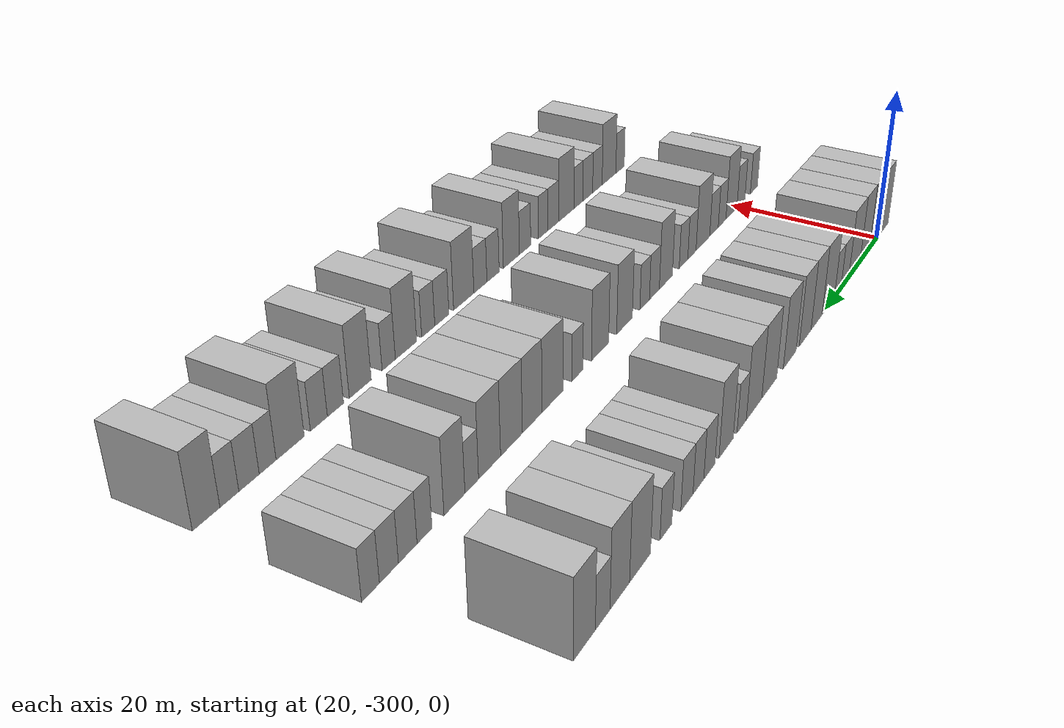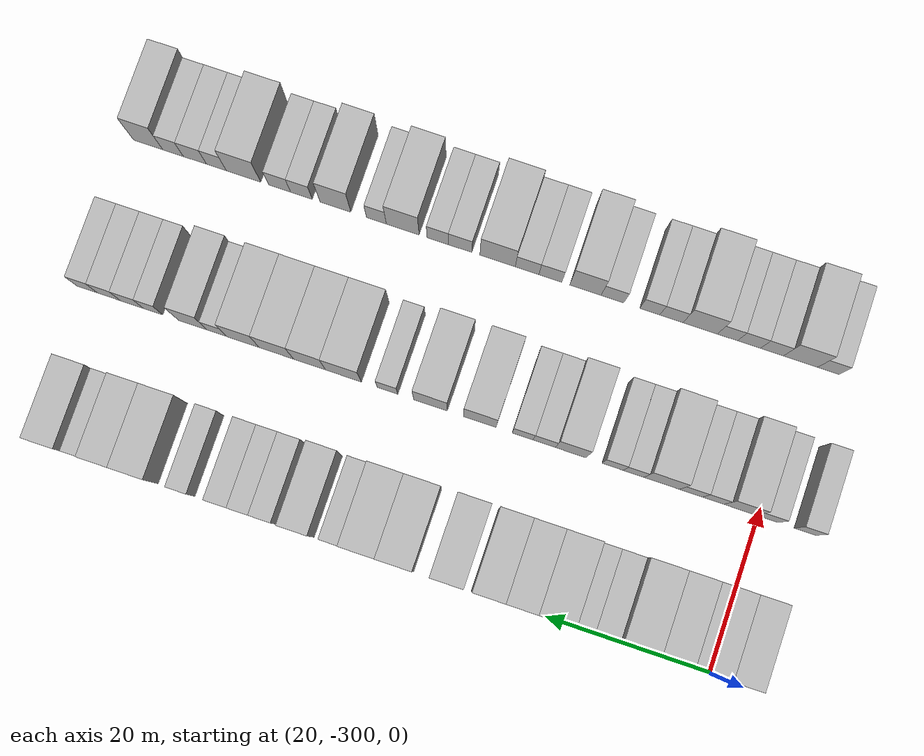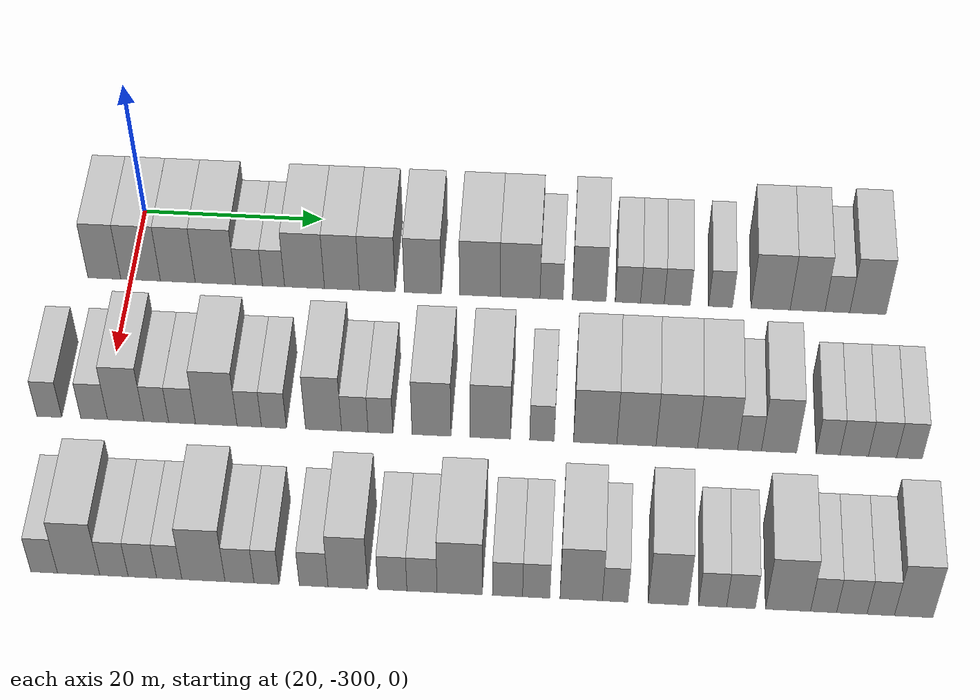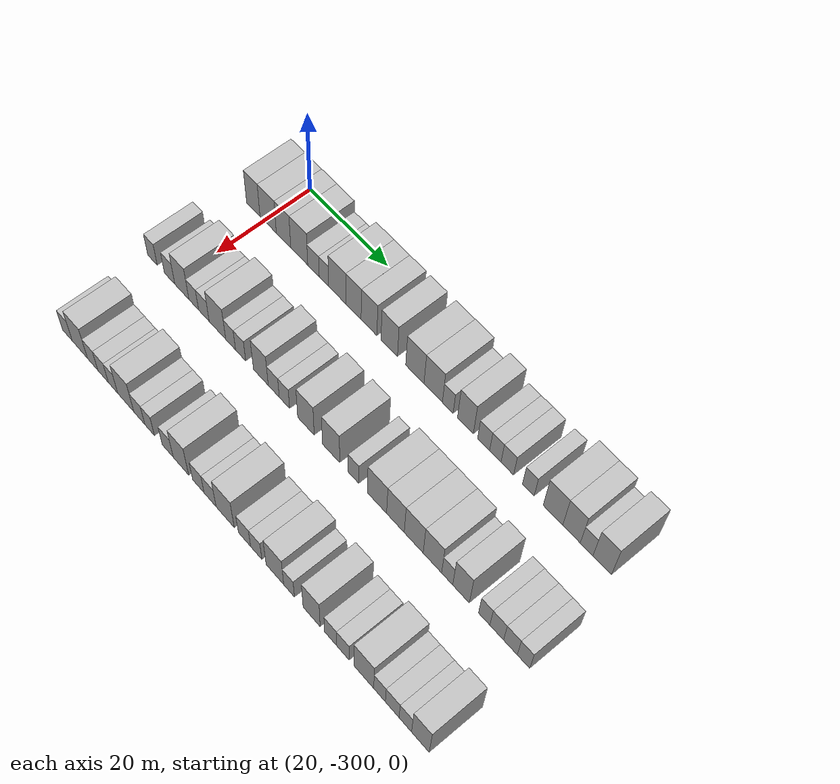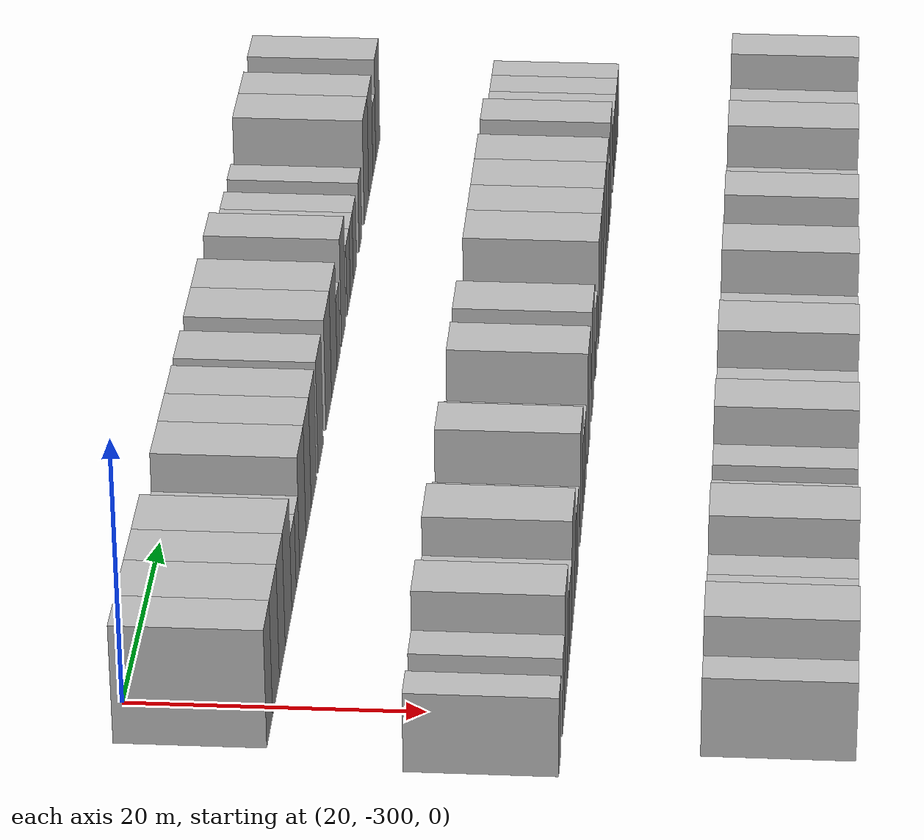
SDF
<sdf version="1.6">
 <world name="default">
  <model name="building_14">
   <static>1</static>
   <pose>25.0000 -302.9602 0 0.000000 0.000000 0.000000</pose>
   <link name="link">
    <pose>0 0 4.50 0 0 0</pose>
    <collision name="collision"><geometry><box><size>10.0000 3.6324 9.0000</size></box></geometry></collision>
    <visual name="visual">
     <cast_shadows>0</cast_shadows>
     <geometry><box><size>10.0000 3.6324 9.0000</size></box></geometry>
     <material>
      <script>
       <uri>model://HANNAS_wall/materials/scripts</uri>
       <uri>model://HANNAS_wall/materials/textures</uri>
       <name>vrc/HANNAS_wall</name>
      </script>
     </material>
    </visual>
   </link>
  </model>
  <model name="building_15">
   <static>1</static>
   <pose>25.0000 -298.9574 0 0.000000 0.000000 0.000000</pose>
   <link name="link">
    <pose>0 0 4.50 0 0 0</pose>
    <collision name="collision"><geometry><box><size>10.0000 4.3732 9.0000</size></box></geometry></collision>
    <visual name="visual">
     <cast_shadows>0</cast_shadows>
     <geometry><box><size>10.0000 4.3732 9.0000</size></box></geometry>
     <material>
      <script>
       <uri>model://HANNAS_wall/materials/scripts</uri>
       <uri>model://HANNAS_wall/materials/textures</uri>
       <name>vrc/HANNAS_wall</name>
      </script>
     </material>
    </visual>
   </link>
  </model>
  <model name="building_16">
   <static>1</static>
   <pose>25.0000 -294.8477 0 0.000000 0.000000 0.000000</pose>
   <link name="link">
    <pose>0 0 4.50 0 0 0</pose>
    <collision name="collision"><geometry><box><size>10.0000 3.8461 9.0000</size></box></geometry></collision>
    <visual name="visual">
     <cast_shadows>0</cast_shadows>
     <geometry><box><size>10.0000 3.8461 9.0000</size></box></geometry>
     <material>
      <script>
       <uri>model://HANNAS_wall/materials/scripts</uri>
       <uri>model://HANNAS_wall/materials/textures</uri>
       <name>vrc/HANNAS_wall</name>
      </script>
     </material>
    </visual>
   </link>
  </model>
  <model name="building_17">
   <static>1</static>
   <pose>25.0000 -290.7039 0 0.000000 0.000000 0.000000</pose>
   <link name="link">
    <pose>0 0 4.50 0 0 0</pose>
    <collision name="collision"><geometry><box><size>10.0000 4.4416 9.0000</size></box></geometry></collision>
    <visual name="visual">
     <cast_shadows>0</cast_shadows>
     <geometry><box><size>10.0000 4.4416 9.0000</size></box></geometry>
     <material>
      <script>
       <uri>model://HANNAS_wall/materials/scripts</uri>
       <uri>model://HANNAS_wall/materials/textures</uri>
       <name>vrc/HANNAS_wall</name>
      </script>
     </material>
    </visual>
   </link>
  </model>
  <model name="building_18">
   <static>1</static>
   <pose>25.0000 -286.9948 0 0.000000 0.000000 0.000000</pose>
   <link name="link">
    <pose>0 0 3.00 0 0 0</pose>
    <collision name="collision"><geometry><box><size>10.0000 2.9767 6.0000</size></box></geometry></collision>
    <visual name="visual">
     <cast_shadows>0</cast_shadows>
     <geometry><box><size>10.0000 2.9767 6.0000</size></box></geometry>
     <material>
      <script>
       <uri>model://HANNAS_wall/materials/scripts</uri>
       <uri>model://HANNAS_wall/materials/textures</uri>
       <name>vrc/HANNAS_wall</name>
      </script>
     </material>
    </visual>
   </link>
  </model>
  <model name="building_19">
   <static>1</static>
   <pose>25.0000 -284.2951 0 0.000000 0.000000 0.000000</pose>
   <link name="link">
    <pose>0 0 3.00 0 0 0</pose>
    <collision name="collision"><geometry><box><size>10.0000 2.4228 6.0000</size></box></geometry></collision>
    <visual name="visual">
     <cast_shadows>0</cast_shadows>
     <geometry><box><size>10.0000 2.4228 6.0000</size></box></geometry>
     <material>
      <script>
       <uri>model://HANNAS_wall/materials/scripts</uri>
       <uri>model://HANNAS_wall/materials/textures</uri>
       <name>vrc/HANNAS_wall</name>
      </script>
     </material>
    </visual>
   </link>
  </model>
  <model name="building_20">
   <static>1</static>
   <pose>25.0000 -280.8944 0 0.000000 0.000000 0.000000</pose>
   <link name="link">
    <pose>0 0 4.50 0 0 0</pose>
    <collision name="collision"><geometry><box><size>10.0000 4.3785 9.0000</size></box></geometry></collision>
    <visual name="visual">
     <cast_shadows>0</cast_shadows>
     <geometry><box><size>10.0000 4.3785 9.0000</size></box></geometry>
     <material>
      <script>
       <uri>model://HANNAS_wall/materials/scripts</uri>
       <uri>model://HANNAS_wall/materials/textures</uri>
       <name>vrc/HANNAS_wall</name>
      </script>
     </material>
    </visual>
   </link>
  </model>
  <model name="building_21">
   <static>1</static>
   <pose>25.0000 -276.7911 0 0.000000 0.000000 0.000000</pose>
   <link name="link">
    <pose>0 0 4.50 0 0 0</pose>
    <collision name="collision"><geometry><box><size>10.0000 3.8281 9.0000</size></box></geometry></collision>
    <visual name="visual">
     <cast_shadows>0</cast_shadows>
     <geometry><box><size>10.0000 3.8281 9.0000</size></box></geometry>
     <material>
      <script>
       <uri>model://HANNAS_wall/materials/scripts</uri>
       <uri>model://HANNAS_wall/materials/textures</uri>
       <name>vrc/HANNAS_wall</name>
      </script>
     </material>
    </visual>
   </link>
  </model>
  <model name="building_22">
   <static>1</static>
   <pose>25.0000 -272.9097 0 0.000000 0.000000 0.000000</pose>
   <link name="link">
    <pose>0 0 4.50 0 0 0</pose>
    <collision name="collision"><geometry><box><size>10.0000 3.9345 9.0000</size></box></geometry></collision>
    <visual name="visual">
     <cast_shadows>0</cast_shadows>
     <geometry><box><size>10.0000 3.9345 9.0000</size></box></geometry>
     <material>
      <script>
       <uri>model://HANNAS_wall/materials/scripts</uri>
       <uri>model://HANNAS_wall/materials/textures</uri>
       <name>vrc/HANNAS_wall</name>
      </script>
     </material>
    </visual>
   </link>
  </model>
  <model name="building_23">
   <static>1</static>
   <pose>25.0000 -267.9215 0 0.000000 0.000000 0.000000</pose>
   <link name="link">
    <pose>0 0 4.50 0 0 0</pose>
    <collision name="collision"><geometry><box><size>10.0000 4.0418 9.0000</size></box></geometry></collision>
    <visual name="visual">
     <cast_shadows>0</cast_shadows>
     <geometry><box><size>10.0000 4.0418 9.0000</size></box></geometry>
     <material>
      <script>
       <uri>model://HANNAS_wall/materials/scripts</uri>
       <uri>model://HANNAS_wall/materials/textures</uri>
       <name>vrc/HANNAS_wall</name>
      </script>
     </material>
    </visual>
   </link>
  </model>
  <model name="building_24">
   <static>1</static>
   <pose>25.0000 -261.6957 0 0.000000 0.000000 0.000000</pose>
   <link name="link">
    <pose>0 0 4.50 0 0 0</pose>
    <collision name="collision"><geometry><box><size>10.0000 4.4099 9.0000</size></box></geometry></collision>
    <visual name="visual">
     <cast_shadows>0</cast_shadows>
     <geometry><box><size>10.0000 4.4099 9.0000</size></box></geometry>
     <material>
      <script>
       <uri>model://HANNAS_wall/materials/scripts</uri>
       <uri>model://HANNAS_wall/materials/textures</uri>
       <name>vrc/HANNAS_wall</name>
      </script>
     </material>
    </visual>
   </link>
  </model>
  <model name="building_25">
   <static>1</static>
   <pose>25.0000 -257.3109 0 0.000000 0.000000 0.000000</pose>
   <link name="link">
    <pose>0 0 4.50 0 0 0</pose>
    <collision name="collision"><geometry><box><size>10.0000 4.3598 9.0000</size></box></geometry></collision>
    <visual name="visual">
     <cast_shadows>0</cast_shadows>
     <geometry><box><size>10.0000 4.3598 9.0000</size></box></geometry>
     <material>
      <script>
       <uri>model://HANNAS_wall/materials/scripts</uri>
       <uri>model://HANNAS_wall/materials/textures</uri>
       <name>vrc/HANNAS_wall</name>
      </script>
     </material>
    </visual>
   </link>
  </model>
  <model name="building_26">
   <static>1</static>
   <pose>25.0000 -253.8704 0 0.000000 0.000000 0.000000</pose>
   <link name="link">
    <pose>0 0 3.00 0 0 0</pose>
    <collision name="collision"><geometry><box><size>10.0000 2.5212 6.0000</size></box></geometry></collision>
    <visual name="visual">
     <cast_shadows>0</cast_shadows>
     <geometry><box><size>10.0000 2.5212 6.0000</size></box></geometry>
     <material>
      <script>
       <uri>model://HANNAS_wall/materials/scripts</uri>
       <uri>model://HANNAS_wall/materials/textures</uri>
       <name>vrc/HANNAS_wall</name>
      </script>
     </material>
    </visual>
   </link>
  </model>
  <model name="building_27">
   <static>1</static>
   <pose>25.0000 -249.7720 0 0.000000 0.000000 0.000000</pose>
   <link name="link">
    <pose>0 0 4.50 0 0 0</pose>
    <collision name="collision"><geometry><box><size>10.0000 3.6756 9.0000</size></box></geometry></collision>
    <visual name="visual">
     <cast_shadows>0</cast_shadows>
     <geometry><box><size>10.0000 3.6756 9.0000</size></box></geometry>
     <material>
      <script>
       <uri>model://HANNAS_wall/materials/scripts</uri>
       <uri>model://HANNAS_wall/materials/textures</uri>
       <name>vrc/HANNAS_wall</name>
      </script>
     </material>
    </visual>
   </link>
  </model>
  <model name="building_28">
   <static>1</static>
   <pose>25.0000 -245.5644 0 0.000000 0.000000 0.000000</pose>
   <link name="link">
    <pose>0 0 3.00 0 0 0</pose>
    <collision name="collision"><geometry><box><size>10.0000 2.7396 6.0000</size></box></geometry></collision>
    <visual name="visual">
     <cast_shadows>0</cast_shadows>
     <geometry><box><size>10.0000 2.7396 6.0000</size></box></geometry>
     <material>
      <script>
       <uri>model://HANNAS_wall/materials/scripts</uri>
       <uri>model://HANNAS_wall/materials/textures</uri>
       <name>vrc/HANNAS_wall</name>
      </script>
     </material>
    </visual>
   </link>
  </model>
  <model name="building_29">
   <static>1</static>
   <pose>25.0000 -242.9074 0 0.000000 0.000000 0.000000</pose>
   <link name="link">
    <pose>0 0 3.00 0 0 0</pose>
    <collision name="collision"><geometry><box><size>10.0000 2.5745 6.0000</size></box></geometry></collision>
    <visual name="visual">
     <cast_shadows>0</cast_shadows>
     <geometry><box><size>10.0000 2.5745 6.0000</size></box></geometry>
     <material>
      <script>
       <uri>model://HANNAS_wall/materials/scripts</uri>
       <uri>model://HANNAS_wall/materials/textures</uri>
       <name>vrc/HANNAS_wall</name>
      </script>
     </material>
    </visual>
   </link>
  </model>
  <model name="building_30">
   <static>1</static>
   <pose>25.0000 -240.2080 0 0.000000 0.000000 0.000000</pose>
   <link name="link">
    <pose>0 0 3.00 0 0 0</pose>
    <collision name="collision"><geometry><box><size>10.0000 2.8241 6.0000</size></box></geometry></collision>
    <visual name="visual">
     <cast_shadows>0</cast_shadows>
     <geometry><box><size>10.0000 2.8241 6.0000</size></box></geometry>
     <material>
      <script>
       <uri>model://HANNAS_wall/materials/scripts</uri>
       <uri>model://HANNAS_wall/materials/textures</uri>
       <name>vrc/HANNAS_wall</name>
      </script>
     </material>
    </visual>
   </link>
  </model>
  <model name="building_31">
   <static>1</static>
   <pose>25.0000 -235.5040 0 0.000000 0.000000 0.000000</pose>
   <link name="link">
    <pose>0 0 3.00 0 0 0</pose>
    <collision name="collision"><geometry><box><size>10.0000 2.5838 6.0000</size></box></geometry></collision>
    <visual name="visual">
     <cast_shadows>0</cast_shadows>
     <geometry><box><size>10.0000 2.5838 6.0000</size></box></geometry>
     <material>
      <script>
       <uri>model://HANNAS_wall/materials/scripts</uri>
       <uri>model://HANNAS_wall/materials/textures</uri>
       <name>vrc/HANNAS_wall</name>
      </script>
     </material>
    </visual>
   </link>
  </model>
  <model name="building_32">
   <static>1</static>
   <pose>25.0000 -230.0899 0 0.000000 0.000000 0.000000</pose>
   <link name="link">
    <pose>0 0 4.50 0 0 0</pose>
    <collision name="collision"><geometry><box><size>10.0000 4.2443 9.0000</size></box></geometry></collision>
    <visual name="visual">
     <cast_shadows>0</cast_shadows>
     <geometry><box><size>10.0000 4.2443 9.0000</size></box></geometry>
     <material>
      <script>
       <uri>model://HANNAS_wall/materials/scripts</uri>
       <uri>model://HANNAS_wall/materials/textures</uri>
       <name>vrc/HANNAS_wall</name>
      </script>
     </material>
    </visual>
   </link>
  </model>
  <model name="building_33">
   <static>1</static>
   <pose>25.0000 -226.0862 0 0.000000 0.000000 0.000000</pose>
   <link name="link">
    <pose>0 0 4.50 0 0 0</pose>
    <collision name="collision"><geometry><box><size>10.0000 3.7631 9.0000</size></box></geometry></collision>
    <visual name="visual">
     <cast_shadows>0</cast_shadows>
     <geometry><box><size>10.0000 3.7631 9.0000</size></box></geometry>
     <material>
      <script>
       <uri>model://HANNAS_wall/materials/scripts</uri>
       <uri>model://HANNAS_wall/materials/textures</uri>
       <name>vrc/HANNAS_wall</name>
      </script>
     </material>
    </visual>
   </link>
  </model>
  <model name="building_34">
   <static>1</static>
   <pose>25.0000 -222.8587 0 0.000000 0.000000 0.000000</pose>
   <link name="link">
    <pose>0 0 3.00 0 0 0</pose>
    <collision name="collision"><geometry><box><size>10.0000 2.6919 6.0000</size></box></geometry></collision>
    <visual name="visual">
     <cast_shadows>0</cast_shadows>
     <geometry><box><size>10.0000 2.6919 6.0000</size></box></geometry>
     <material>
      <script>
       <uri>model://HANNAS_wall/materials/scripts</uri>
       <uri>model://HANNAS_wall/materials/textures</uri>
       <name>vrc/HANNAS_wall</name>
      </script>
     </material>
    </visual>
   </link>
  </model>
  <model name="building_35">
   <static>1</static>
   <pose>25.0000 -219.5621 0 0.000000 0.000000 0.000000</pose>
   <link name="link">
    <pose>0 0 4.50 0 0 0</pose>
    <collision name="collision"><geometry><box><size>10.0000 3.9012 9.0000</size></box></geometry></collision>
    <visual name="visual">
     <cast_shadows>0</cast_shadows>
     <geometry><box><size>10.0000 3.9012 9.0000</size></box></geometry>
     <material>
      <script>
       <uri>model://HANNAS_wall/materials/scripts</uri>
       <uri>model://HANNAS_wall/materials/textures</uri>
       <name>vrc/HANNAS_wall</name>
      </script>
     </material>
    </visual>
   </link>
  </model>
  <model name="building_185">
   <static>1</static>
   <pose>44.0000 -305.6459 0 0.000000 0.000000 0.000000</pose>
   <link name="link">
    <pose>0 0 3.00 0 0 0</pose>
    <collision name="collision"><geometry><box><size>10.0000 2.6331 6.0000</size></box></geometry></collision>
    <visual name="visual">
     <cast_shadows>0</cast_shadows>
     <geometry><box><size>10.0000 2.6331 6.0000</size></box></geometry>
     <material>
      <script>
       <uri>model://HANNAS_wall/materials/scripts</uri>
       <uri>model://HANNAS_wall/materials/textures</uri>
       <name>vrc/HANNAS_wall</name>
      </script>
     </material>
    </visual>
   </link>
  </model>
  <model name="building_186">
   <static>1</static>
   <pose>44.0000 -300.9179 0 0.000000 0.000000 0.000000</pose>
   <link name="link">
    <pose>0 0 3.00 0 0 0</pose>
    <collision name="collision"><geometry><box><size>10.0000 2.8230 6.0000</size></box></geometry></collision>
    <visual name="visual">
     <cast_shadows>0</cast_shadows>
     <geometry><box><size>10.0000 2.8230 6.0000</size></box></geometry>
     <material>
      <script>
       <uri>model://HANNAS_wall/materials/scripts</uri>
       <uri>model://HANNAS_wall/materials/textures</uri>
       <name>vrc/HANNAS_wall</name>
      </script>
     </material>
    </visual>
   </link>
  </model>
  <model name="building_187">
   <static>1</static>
   <pose>44.0000 -297.5919 0 0.000000 0.000000 0.000000</pose>
   <link name="link">
    <pose>0 0 4.50 0 0 0</pose>
    <collision name="collision"><geometry><box><size>10.0000 3.8291 9.0000</size></box></geometry></collision>
    <visual name="visual">
     <cast_shadows>0</cast_shadows>
     <geometry><box><size>10.0000 3.8291 9.0000</size></box></geometry>
     <material>
      <script>
       <uri>model://HANNAS_wall/materials/scripts</uri>
       <uri>model://HANNAS_wall/materials/textures</uri>
       <name>vrc/HANNAS_wall</name>
      </script>
     </material>
    </visual>
   </link>
  </model>
  <model name="building_188">
   <static>1</static>
   <pose>44.0000 -294.3814 0 0.000000 0.000000 0.000000</pose>
   <link name="link">
    <pose>0 0 3.00 0 0 0</pose>
    <collision name="collision"><geometry><box><size>10.0000 2.5919 6.0000</size></box></geometry></collision>
    <visual name="visual">
     <cast_shadows>0</cast_shadows>
     <geometry><box><size>10.0000 2.5919 6.0000</size></box></geometry>
     <material>
      <script>
       <uri>model://HANNAS_wall/materials/scripts</uri>
       <uri>model://HANNAS_wall/materials/textures</uri>
       <name>vrc/HANNAS_wall</name>
      </script>
     </material>
    </visual>
   </link>
  </model>
  <model name="building_189">
   <static>1</static>
   <pose>44.0000 -291.6743 0 0.000000 0.000000 0.000000</pose>
   <link name="link">
    <pose>0 0 3.00 0 0 0</pose>
    <collision name="collision"><geometry><box><size>10.0000 2.8221 6.0000</size></box></geometry></collision>
    <visual name="visual">
     <cast_shadows>0</cast_shadows>
     <geometry><box><size>10.0000 2.8221 6.0000</size></box></geometry>
     <material>
      <script>
       <uri>model://HANNAS_wall/materials/scripts</uri>
       <uri>model://HANNAS_wall/materials/textures</uri>
       <name>vrc/HANNAS_wall</name>
      </script>
     </material>
    </visual>
   </link>
  </model>
  <model name="building_190">
   <static>1</static>
   <pose>44.0000 -288.0842 0 0.000000 0.000000 0.000000</pose>
   <link name="link">
    <pose>0 0 4.50 0 0 0</pose>
    <collision name="collision"><geometry><box><size>10.0000 4.3581 9.0000</size></box></geometry></collision>
    <visual name="visual">
     <cast_shadows>0</cast_shadows>
     <geometry><box><size>10.0000 4.3581 9.0000</size></box></geometry>
     <material>
      <script>
       <uri>model://HANNAS_wall/materials/scripts</uri>
       <uri>model://HANNAS_wall/materials/textures</uri>
       <name>vrc/HANNAS_wall</name>
      </script>
     </material>
    </visual>
   </link>
  </model>
  <model name="building_191">
   <static>1</static>
   <pose>44.0000 -284.6256 0 0.000000 0.000000 0.000000</pose>
   <link name="link">
    <pose>0 0 3.00 0 0 0</pose>
    <collision name="collision"><geometry><box><size>10.0000 2.5593 6.0000</size></box></geometry></collision>
    <visual name="visual">
     <cast_shadows>0</cast_shadows>
     <geometry><box><size>10.0000 2.5593 6.0000</size></box></geometry>
     <material>
      <script>
       <uri>model://HANNAS_wall/materials/scripts</uri>
       <uri>model://HANNAS_wall/materials/textures</uri>
       <name>vrc/HANNAS_wall</name>
      </script>
     </material>
    </visual>
   </link>
  </model>
  <model name="building_192">
   <static>1</static>
   <pose>44.0000 -282.0410 0 0.000000 0.000000 0.000000</pose>
   <link name="link">
    <pose>0 0 3.00 0 0 0</pose>
    <collision name="collision"><geometry><box><size>10.0000 2.6097 6.0000</size></box></geometry></collision>
    <visual name="visual">
     <cast_shadows>0</cast_shadows>
     <geometry><box><size>10.0000 2.6097 6.0000</size></box></geometry>
     <material>
      <script>
       <uri>model://HANNAS_wall/materials/scripts</uri>
       <uri>model://HANNAS_wall/materials/textures</uri>
       <name>vrc/HANNAS_wall</name>
      </script>
     </material>
    </visual>
   </link>
  </model>
  <model name="building_193">
   <static>1</static>
   <pose>44.0000 -276.8554 0 0.000000 0.000000 0.000000</pose>
   <link name="link">
    <pose>0 0 4.50 0 0 0</pose>
    <collision name="collision"><geometry><box><size>10.0000 3.7615 9.0000</size></box></geometry></collision>
    <visual name="visual">
     <cast_shadows>0</cast_shadows>
     <geometry><box><size>10.0000 3.7615 9.0000</size></box></geometry>
     <material>
      <script>
       <uri>model://HANNAS_wall/materials/scripts</uri>
       <uri>model://HANNAS_wall/materials/textures</uri>
       <name>vrc/HANNAS_wall</name>
      </script>
     </material>
    </visual>
   </link>
  </model>
  <model name="building_194">
   <static>1</static>
   <pose>44.0000 -273.5908 0 0.000000 0.000000 0.000000</pose>
   <link name="link">
    <pose>0 0 3.00 0 0 0</pose>
    <collision name="collision"><geometry><box><size>10.0000 2.7677 6.0000</size></box></geometry></collision>
    <visual name="visual">
     <cast_shadows>0</cast_shadows>
     <geometry><box><size>10.0000 2.7677 6.0000</size></box></geometry>
     <material>
      <script>
       <uri>model://HANNAS_wall/materials/scripts</uri>
       <uri>model://HANNAS_wall/materials/textures</uri>
       <name>vrc/HANNAS_wall</name>
      </script>
     </material>
    </visual>
   </link>
  </model>
  <model name="building_195">
   <static>1</static>
   <pose>44.0000 -270.9117 0 0.000000 0.000000 0.000000</pose>
   <link name="link">
    <pose>0 0 3.00 0 0 0</pose>
    <collision name="collision"><geometry><box><size>10.0000 2.5904 6.0000</size></box></geometry></collision>
    <visual name="visual">
     <cast_shadows>0</cast_shadows>
     <geometry><box><size>10.0000 2.5904 6.0000</size></box></geometry>
     <material>
      <script>
       <uri>model://HANNAS_wall/materials/scripts</uri>
       <uri>model://HANNAS_wall/materials/textures</uri>
       <name>vrc/HANNAS_wall</name>
      </script>
     </material>
    </visual>
   </link>
  </model>
  <model name="building_196">
   <static>1</static>
   <pose>44.0000 -265.5893 0 0.000000 0.000000 0.000000</pose>
   <link name="link">
    <pose>0 0 4.50 0 0 0</pose>
    <collision name="collision"><geometry><box><size>10.0000 4.0545 9.0000</size></box></geometry></collision>
    <visual name="visual">
     <cast_shadows>0</cast_shadows>
     <geometry><box><size>10.0000 4.0545 9.0000</size></box></geometry>
     <material>
      <script>
       <uri>model://HANNAS_wall/materials/scripts</uri>
       <uri>model://HANNAS_wall/materials/textures</uri>
       <name>vrc/HANNAS_wall</name>
      </script>
     </material>
    </visual>
   </link>
  </model>
  <model name="building_197">
   <static>1</static>
   <pose>44.0000 -259.4770 0 0.000000 0.000000 0.000000</pose>
   <link name="link">
    <pose>0 0 4.50 0 0 0</pose>
    <collision name="collision"><geometry><box><size>10.0000 4.1701 9.0000</size></box></geometry></collision>
    <visual name="visual">
     <cast_shadows>0</cast_shadows>
     <geometry><box><size>10.0000 4.1701 9.0000</size></box></geometry>
     <material>
      <script>
       <uri>model://HANNAS_wall/materials/scripts</uri>
       <uri>model://HANNAS_wall/materials/textures</uri>
       <name>vrc/HANNAS_wall</name>
      </script>
     </material>
    </visual>
   </link>
  </model>
  <model name="building_198">
   <static>1</static>
   <pose>44.0000 -254.1169 0 0.000000 0.000000 0.000000</pose>
   <link name="link">
    <pose>0 0 3.00 0 0 0</pose>
    <collision name="collision"><geometry><box><size>10.0000 2.5501 6.0000</size></box></geometry></collision>
    <visual name="visual">
     <cast_shadows>0</cast_shadows>
     <geometry><box><size>10.0000 2.5501 6.0000</size></box></geometry>
     <material>
      <script>
       <uri>model://HANNAS_wall/materials/scripts</uri>
       <uri>model://HANNAS_wall/materials/textures</uri>
       <name>vrc/HANNAS_wall</name>
      </script>
     </material>
    </visual>
   </link>
  </model>
  <model name="building_199">
   <static>1</static>
   <pose>44.0000 -248.6000 0 0.000000 0.000000 0.000000</pose>
   <link name="link">
    <pose>0 0 4.50 0 0 0</pose>
    <collision name="collision"><geometry><box><size>10.0000 4.4836 9.0000</size></box></geometry></collision>
    <visual name="visual">
     <cast_shadows>0</cast_shadows>
     <geometry><box><size>10.0000 4.4836 9.0000</size></box></geometry>
     <material>
      <script>
       <uri>model://HANNAS_wall/materials/scripts</uri>
       <uri>model://HANNAS_wall/materials/textures</uri>
       <name>vrc/HANNAS_wall</name>
      </script>
     </material>
    </visual>
   </link>
  </model>
  <model name="building_200">
   <static>1</static>
   <pose>44.0000 -244.3317 0 0.000000 0.000000 0.000000</pose>
   <link name="link">
    <pose>0 0 4.50 0 0 0</pose>
    <collision name="collision"><geometry><box><size>10.0000 4.0530 9.0000</size></box></geometry></collision>
    <visual name="visual">
     <cast_shadows>0</cast_shadows>
     <geometry><box><size>10.0000 4.0530 9.0000</size></box></geometry>
     <material>
      <script>
       <uri>model://HANNAS_wall/materials/scripts</uri>
       <uri>model://HANNAS_wall/materials/textures</uri>
       <name>vrc/HANNAS_wall</name>
      </script>
     </material>
    </visual>
   </link>
  </model>
  <model name="building_201">
   <static>1</static>
   <pose>44.0000 -240.1567 0 0.000000 0.000000 0.000000</pose>
   <link name="link">
    <pose>0 0 4.50 0 0 0</pose>
    <collision name="collision"><geometry><box><size>10.0000 4.2970 9.0000</size></box></geometry></collision>
    <visual name="visual">
     <cast_shadows>0</cast_shadows>
     <geometry><box><size>10.0000 4.2970 9.0000</size></box></geometry>
     <material>
      <script>
       <uri>model://HANNAS_wall/materials/scripts</uri>
       <uri>model://HANNAS_wall/materials/textures</uri>
       <name>vrc/HANNAS_wall</name>
      </script>
     </material>
    </visual>
   </link>
  </model>
  <model name="building_202">
   <static>1</static>
   <pose>44.0000 -235.9486 0 0.000000 0.000000 0.000000</pose>
   <link name="link">
    <pose>0 0 4.50 0 0 0</pose>
    <collision name="collision"><geometry><box><size>10.0000 4.1191 9.0000</size></box></geometry></collision>
    <visual name="visual">
     <cast_shadows>0</cast_shadows>
     <geometry><box><size>10.0000 4.1191 9.0000</size></box></geometry>
     <material>
      <script>
       <uri>model://HANNAS_wall/materials/scripts</uri>
       <uri>model://HANNAS_wall/materials/textures</uri>
       <name>vrc/HANNAS_wall</name>
      </script>
     </material>
    </visual>
   </link>
  </model>
  <model name="building_203">
   <static>1</static>
   <pose>44.0000 -232.6608 0 0.000000 0.000000 0.000000</pose>
   <link name="link">
    <pose>0 0 3.00 0 0 0</pose>
    <collision name="collision"><geometry><box><size>10.0000 2.4566 6.0000</size></box></geometry></collision>
    <visual name="visual">
     <cast_shadows>0</cast_shadows>
     <geometry><box><size>10.0000 2.4566 6.0000</size></box></geometry>
     <material>
      <script>
       <uri>model://HANNAS_wall/materials/scripts</uri>
       <uri>model://HANNAS_wall/materials/textures</uri>
       <name>vrc/HANNAS_wall</name>
      </script>
     </material>
    </visual>
   </link>
  </model>
  <model name="building_204">
   <static>1</static>
   <pose>44.0000 -229.6119 0 0.000000 0.000000 0.000000</pose>
   <link name="link">
    <pose>0 0 4.50 0 0 0</pose>
    <collision name="collision"><geometry><box><size>10.0000 3.6412 9.0000</size></box></geometry></collision>
    <visual name="visual">
     <cast_shadows>0</cast_shadows>
     <geometry><box><size>10.0000 3.6412 9.0000</size></box></geometry>
     <material>
      <script>
       <uri>model://HANNAS_wall/materials/scripts</uri>
       <uri>model://HANNAS_wall/materials/textures</uri>
       <name>vrc/HANNAS_wall</name>
      </script>
     </material>
    </visual>
   </link>
  </model>
  <model name="building_205">
   <static>1</static>
   <pose>44.0000 -224.5716 0 0.000000 0.000000 0.000000</pose>
   <link name="link">
    <pose>0 0 3.00 0 0 0</pose>
    <collision name="collision"><geometry><box><size>10.0000 2.4394 6.0000</size></box></geometry></collision>
    <visual name="visual">
     <cast_shadows>0</cast_shadows>
     <geometry><box><size>10.0000 2.4394 6.0000</size></box></geometry>
     <material>
      <script>
       <uri>model://HANNAS_wall/materials/scripts</uri>
       <uri>model://HANNAS_wall/materials/textures</uri>
       <name>vrc/HANNAS_wall</name>
      </script>
     </material>
    </visual>
   </link>
  </model>
  <model name="building_206">
   <static>1</static>
   <pose>44.0000 -221.8832 0 0.000000 0.000000 0.000000</pose>
   <link name="link">
    <pose>0 0 3.00 0 0 0</pose>
    <collision name="collision"><geometry><box><size>10.0000 2.9373 6.0000</size></box></geometry></collision>
    <visual name="visual">
     <cast_shadows>0</cast_shadows>
     <geometry><box><size>10.0000 2.9373 6.0000</size></box></geometry>
     <material>
      <script>
       <uri>model://HANNAS_wall/materials/scripts</uri>
       <uri>model://HANNAS_wall/materials/textures</uri>
       <name>vrc/HANNAS_wall</name>
      </script>
     </material>
    </visual>
   </link>
  </model>
  <model name="building_207">
   <static>1</static>
   <pose>44.0000 -218.9703 0 0.000000 0.000000 0.000000</pose>
   <link name="link">
    <pose>0 0 3.00 0 0 0</pose>
    <collision name="collision"><geometry><box><size>10.0000 2.8885 6.0000</size></box></geometry></collision>
    <visual name="visual">
     <cast_shadows>0</cast_shadows>
     <geometry><box><size>10.0000 2.8885 6.0000</size></box></geometry>
     <material>
      <script>
       <uri>model://HANNAS_wall/materials/scripts</uri>
       <uri>model://HANNAS_wall/materials/textures</uri>
       <name>vrc/HANNAS_wall</name>
      </script>
     </material>
    </visual>
   </link>
  </model>
  <model name="building_208">
   <static>1</static>
   <pose>44.0000 -216.2135 0 0.000000 0.000000 0.000000</pose>
   <link name="link">
    <pose>0 0 3.00 0 0 0</pose>
    <collision name="collision"><geometry><box><size>10.0000 2.6251 6.0000</size></box></geometry></collision>
    <visual name="visual">
     <cast_shadows>0</cast_shadows>
     <geometry><box><size>10.0000 2.6251 6.0000</size></box></geometry>
     <material>
      <script>
       <uri>model://HANNAS_wall/materials/scripts</uri>
       <uri>model://HANNAS_wall/materials/textures</uri>
       <name>vrc/HANNAS_wall</name>
      </script>
     </material>
    </visual>
   </link>
  </model>
  <model name="building_358">
   <static>1</static>
   <pose>63.0000 -302.7469 0 0.000000 0.000000 0.000000</pose>
   <link name="link">
    <pose>0 0 3.00 0 0 0</pose>
    <collision name="collision"><geometry><box><size>10.0000 2.6545 6.0000</size></box></geometry></collision>
    <visual name="visual">
     <cast_shadows>0</cast_shadows>
     <geometry><box><size>10.0000 2.6545 6.0000</size></box></geometry>
     <material>
      <script>
       <uri>model://HANNAS_wall/materials/scripts</uri>
       <uri>model://HANNAS_wall/materials/textures</uri>
       <name>vrc/HANNAS_wall</name>
      </script>
     </material>
    </visual>
   </link>
  </model>
  <model name="building_359">
   <static>1</static>
   <pose>63.0000 -299.3025 0 0.000000 0.000000 0.000000</pose>
   <link name="link">
    <pose>0 0 4.50 0 0 0</pose>
    <collision name="collision"><geometry><box><size>10.0000 4.2343 9.0000</size></box></geometry></collision>
    <visual name="visual">
     <cast_shadows>0</cast_shadows>
     <geometry><box><size>10.0000 4.2343 9.0000</size></box></geometry>
     <material>
      <script>
       <uri>model://HANNAS_wall/materials/scripts</uri>
       <uri>model://HANNAS_wall/materials/textures</uri>
       <name>vrc/HANNAS_wall</name>
      </script>
     </material>
    </visual>
   </link>
  </model>
  <model name="building_360">
   <static>1</static>
   <pose>63.0000 -295.7668 0 0.000000 0.000000 0.000000</pose>
   <link name="link">
    <pose>0 0 3.00 0 0 0</pose>
    <collision name="collision"><geometry><box><size>10.0000 2.8371 6.0000</size></box></geometry></collision>
    <visual name="visual">
     <cast_shadows>0</cast_shadows>
     <geometry><box><size>10.0000 2.8371 6.0000</size></box></geometry>
     <material>
      <script>
       <uri>model://HANNAS_wall/materials/scripts</uri>
       <uri>model://HANNAS_wall/materials/textures</uri>
       <name>vrc/HANNAS_wall</name>
      </script>
     </material>
    </visual>
   </link>
  </model>
  <model name="building_361">
   <static>1</static>
   <pose>63.0000 -292.9269 0 0.000000 0.000000 0.000000</pose>
   <link name="link">
    <pose>0 0 3.00 0 0 0</pose>
    <collision name="collision"><geometry><box><size>10.0000 2.8427 6.0000</size></box></geometry></collision>
    <visual name="visual">
     <cast_shadows>0</cast_shadows>
     <geometry><box><size>10.0000 2.8427 6.0000</size></box></geometry>
     <material>
      <script>
       <uri>model://HANNAS_wall/materials/scripts</uri>
       <uri>model://HANNAS_wall/materials/textures</uri>
       <name>vrc/HANNAS_wall</name>
      </script>
     </material>
    </visual>
   </link>
  </model>
  <model name="building_362">
   <static>1</static>
   <pose>63.0000 -290.2471 0 0.000000 0.000000 0.000000</pose>
   <link name="link">
    <pose>0 0 3.00 0 0 0</pose>
    <collision name="collision"><geometry><box><size>10.0000 2.5169 6.0000</size></box></geometry></collision>
    <visual name="visual">
     <cast_shadows>0</cast_shadows>
     <geometry><box><size>10.0000 2.5169 6.0000</size></box></geometry>
     <material>
      <script>
       <uri>model://HANNAS_wall/materials/scripts</uri>
       <uri>model://HANNAS_wall/materials/textures</uri>
       <name>vrc/HANNAS_wall</name>
      </script>
     </material>
    </visual>
   </link>
  </model>
  <model name="building_363">
   <static>1</static>
   <pose>63.0000 -286.8441 0 0.000000 0.000000 0.000000</pose>
   <link name="link">
    <pose>0 0 4.50 0 0 0</pose>
    <collision name="collision"><geometry><box><size>10.0000 4.2891 9.0000</size></box></geometry></collision>
    <visual name="visual">
     <cast_shadows>0</cast_shadows>
     <geometry><box><size>10.0000 4.2891 9.0000</size></box></geometry>
     <material>
      <script>
       <uri>model://HANNAS_wall/materials/scripts</uri>
       <uri>model://HANNAS_wall/materials/textures</uri>
       <name>vrc/HANNAS_wall</name>
      </script>
     </material>
    </visual>
   </link>
  </model>
  <model name="building_364">
   <static>1</static>
   <pose>63.0000 -283.2509 0 0.000000 0.000000 0.000000</pose>
   <link name="link">
    <pose>0 0 3.00 0 0 0</pose>
    <collision name="collision"><geometry><box><size>10.0000 2.8972 6.0000</size></box></geometry></collision>
    <visual name="visual">
     <cast_shadows>0</cast_shadows>
     <geometry><box><size>10.0000 2.8972 6.0000</size></box></geometry>
     <material>
      <script>
       <uri>model://HANNAS_wall/materials/scripts</uri>
       <uri>model://HANNAS_wall/materials/textures</uri>
       <name>vrc/HANNAS_wall</name>
      </script>
     </material>
    </visual>
   </link>
  </model>
  <model name="building_365">
   <static>1</static>
   <pose>63.0000 -280.5549 0 0.000000 0.000000 0.000000</pose>
   <link name="link">
    <pose>0 0 3.00 0 0 0</pose>
    <collision name="collision"><geometry><box><size>10.0000 2.4950 6.0000</size></box></geometry></collision>
    <visual name="visual">
     <cast_shadows>0</cast_shadows>
     <geometry><box><size>10.0000 2.4950 6.0000</size></box></geometry>
     <material>
      <script>
       <uri>model://HANNAS_wall/materials/scripts</uri>
       <uri>model://HANNAS_wall/materials/textures</uri>
       <name>vrc/HANNAS_wall</name>
      </script>
     </material>
    </visual>
   </link>
  </model>
  <model name="building_366">
   <static>1</static>
   <pose>63.0000 -275.8825 0 0.000000 0.000000 0.000000</pose>
   <link name="link">
    <pose>0 0 3.00 0 0 0</pose>
    <collision name="collision"><geometry><box><size>10.0000 2.8498 6.0000</size></box></geometry></collision>
    <visual name="visual">
     <cast_shadows>0</cast_shadows>
     <geometry><box><size>10.0000 2.8498 6.0000</size></box></geometry>
     <material>
      <script>
       <uri>model://HANNAS_wall/materials/scripts</uri>
       <uri>model://HANNAS_wall/materials/textures</uri>
       <name>vrc/HANNAS_wall</name>
      </script>
     </material>
    </visual>
   </link>
  </model>
  <model name="building_367">
   <static>1</static>
   <pose>63.0000 -272.4917 0 0.000000 0.000000 0.000000</pose>
   <link name="link">
    <pose>0 0 4.50 0 0 0</pose>
    <collision name="collision"><geometry><box><size>10.0000 3.9318 9.0000</size></box></geometry></collision>
    <visual name="visual">
     <cast_shadows>0</cast_shadows>
     <geometry><box><size>10.0000 3.9318 9.0000</size></box></geometry>
     <material>
      <script>
       <uri>model://HANNAS_wall/materials/scripts</uri>
       <uri>model://HANNAS_wall/materials/textures</uri>
       <name>vrc/HANNAS_wall</name>
      </script>
     </material>
    </visual>
   </link>
  </model>
  <model name="building_368">
   <static>1</static>
   <pose>63.0000 -268.0848 0 0.000000 0.000000 0.000000</pose>
   <link name="link">
    <pose>0 0 3.00 0 0 0</pose>
    <collision name="collision"><geometry><box><size>10.0000 2.8820 6.0000</size></box></geometry></collision>
    <visual name="visual">
     <cast_shadows>0</cast_shadows>
     <geometry><box><size>10.0000 2.8820 6.0000</size></box></geometry>
     <material>
      <script>
       <uri>model://HANNAS_wall/materials/scripts</uri>
       <uri>model://HANNAS_wall/materials/textures</uri>
       <name>vrc/HANNAS_wall</name>
      </script>
     </material>
    </visual>
   </link>
  </model>
  <model name="building_369">
   <static>1</static>
   <pose>63.0000 -265.1536 0 0.000000 0.000000 0.000000</pose>
   <link name="link">
    <pose>0 0 3.00 0 0 0</pose>
    <collision name="collision"><geometry><box><size>10.0000 2.9804 6.0000</size></box></geometry></collision>
    <visual name="visual">
     <cast_shadows>0</cast_shadows>
     <geometry><box><size>10.0000 2.9804 6.0000</size></box></geometry>
     <material>
      <script>
       <uri>model://HANNAS_wall/materials/scripts</uri>
       <uri>model://HANNAS_wall/materials/textures</uri>
       <name>vrc/HANNAS_wall</name>
      </script>
     </material>
    </visual>
   </link>
  </model>
  <model name="building_370">
   <static>1</static>
   <pose>63.0000 -261.4344 0 0.000000 0.000000 0.000000</pose>
   <link name="link">
    <pose>0 0 4.50 0 0 0</pose>
    <collision name="collision"><geometry><box><size>10.0000 4.4580 9.0000</size></box></geometry></collision>
    <visual name="visual">
     <cast_shadows>0</cast_shadows>
     <geometry><box><size>10.0000 4.4580 9.0000</size></box></geometry>
     <material>
      <script>
       <uri>model://HANNAS_wall/materials/scripts</uri>
       <uri>model://HANNAS_wall/materials/textures</uri>
       <name>vrc/HANNAS_wall</name>
      </script>
     </material>
    </visual>
   </link>
  </model>
  <model name="building_371">
   <static>1</static>
   <pose>63.0000 -256.7177 0 0.000000 0.000000 0.000000</pose>
   <link name="link">
    <pose>0 0 3.00 0 0 0</pose>
    <collision name="collision"><geometry><box><size>10.0000 2.9755 6.0000</size></box></geometry></collision>
    <visual name="visual">
     <cast_shadows>0</cast_shadows>
     <geometry><box><size>10.0000 2.9755 6.0000</size></box></geometry>
     <material>
      <script>
       <uri>model://HANNAS_wall/materials/scripts</uri>
       <uri>model://HANNAS_wall/materials/textures</uri>
       <name>vrc/HANNAS_wall</name>
      </script>
     </material>
    </visual>
   </link>
  </model>
  <model name="building_372">
   <static>1</static>
   <pose>63.0000 -253.8854 0 0.000000 0.000000 0.000000</pose>
   <link name="link">
    <pose>0 0 3.00 0 0 0</pose>
    <collision name="collision"><geometry><box><size>10.0000 2.6892 6.0000</size></box></geometry></collision>
    <visual name="visual">
     <cast_shadows>0</cast_shadows>
     <geometry><box><size>10.0000 2.6892 6.0000</size></box></geometry>
     <material>
      <script>
       <uri>model://HANNAS_wall/materials/scripts</uri>
       <uri>model://HANNAS_wall/materials/textures</uri>
       <name>vrc/HANNAS_wall</name>
      </script>
     </material>
    </visual>
   </link>
  </model>
  <model name="building_373">
   <static>1</static>
   <pose>63.0000 -249.4580 0 0.000000 0.000000 0.000000</pose>
   <link name="link">
    <pose>0 0 4.50 0 0 0</pose>
    <collision name="collision"><geometry><box><size>10.0000 4.1654 9.0000</size></box></geometry></collision>
    <visual name="visual">
     <cast_shadows>0</cast_shadows>
     <geometry><box><size>10.0000 4.1654 9.0000</size></box></geometry>
     <material>
      <script>
       <uri>model://HANNAS_wall/materials/scripts</uri>
       <uri>model://HANNAS_wall/materials/textures</uri>
       <name>vrc/HANNAS_wall</name>
      </script>
     </material>
    </visual>
   </link>
  </model>
  <model name="building_374">
   <static>1</static>
   <pose>63.0000 -246.1209 0 0.000000 0.000000 0.000000</pose>
   <link name="link">
    <pose>0 0 3.00 0 0 0</pose>
    <collision name="collision"><geometry><box><size>10.0000 2.5088 6.0000</size></box></geometry></collision>
    <visual name="visual">
     <cast_shadows>0</cast_shadows>
     <geometry><box><size>10.0000 2.5088 6.0000</size></box></geometry>
     <material>
      <script>
       <uri>model://HANNAS_wall/materials/scripts</uri>
       <uri>model://HANNAS_wall/materials/textures</uri>
       <name>vrc/HANNAS_wall</name>
      </script>
     </material>
    </visual>
   </link>
  </model>
  <model name="building_375">
   <static>1</static>
   <pose>63.0000 -240.9071 0 0.000000 0.000000 0.000000</pose>
   <link name="link">
    <pose>0 0 4.50 0 0 0</pose>
    <collision name="collision"><geometry><box><size>10.0000 3.9188 9.0000</size></box></geometry></collision>
    <visual name="visual">
     <cast_shadows>0</cast_shadows>
     <geometry><box><size>10.0000 3.9188 9.0000</size></box></geometry>
     <material>
      <script>
       <uri>model://HANNAS_wall/materials/scripts</uri>
       <uri>model://HANNAS_wall/materials/textures</uri>
       <name>vrc/HANNAS_wall</name>
      </script>
     </material>
    </visual>
   </link>
  </model>
  <model name="building_376">
   <static>1</static>
   <pose>63.0000 -236.5701 0 0.000000 0.000000 0.000000</pose>
   <link name="link">
    <pose>0 0 3.00 0 0 0</pose>
    <collision name="collision"><geometry><box><size>10.0000 2.7552 6.0000</size></box></geometry></collision>
    <visual name="visual">
     <cast_shadows>0</cast_shadows>
     <geometry><box><size>10.0000 2.7552 6.0000</size></box></geometry>
     <material>
      <script>
       <uri>model://HANNAS_wall/materials/scripts</uri>
       <uri>model://HANNAS_wall/materials/textures</uri>
       <name>vrc/HANNAS_wall</name>
      </script>
     </material>
    </visual>
   </link>
  </model>
  <model name="building_377">
   <static>1</static>
   <pose>63.0000 -233.7864 0 0.000000 0.000000 0.000000</pose>
   <link name="link">
    <pose>0 0 3.00 0 0 0</pose>
    <collision name="collision"><geometry><box><size>10.0000 2.8122 6.0000</size></box></geometry></collision>
    <visual name="visual">
     <cast_shadows>0</cast_shadows>
     <geometry><box><size>10.0000 2.8122 6.0000</size></box></geometry>
     <material>
      <script>
       <uri>model://HANNAS_wall/materials/scripts</uri>
       <uri>model://HANNAS_wall/materials/textures</uri>
       <name>vrc/HANNAS_wall</name>
      </script>
     </material>
    </visual>
   </link>
  </model>
  <model name="building_378">
   <static>1</static>
   <pose>63.0000 -229.1794 0 0.000000 0.000000 0.000000</pose>
   <link name="link">
    <pose>0 0 4.50 0 0 0</pose>
    <collision name="collision"><geometry><box><size>10.0000 4.4017 9.0000</size></box></geometry></collision>
    <visual name="visual">
     <cast_shadows>0</cast_shadows>
     <geometry><box><size>10.0000 4.4017 9.0000</size></box></geometry>
     <material>
      <script>
       <uri>model://HANNAS_wall/materials/scripts</uri>
       <uri>model://HANNAS_wall/materials/textures</uri>
       <name>vrc/HANNAS_wall</name>
      </script>
     </material>
    </visual>
   </link>
  </model>
  <model name="building_379">
   <static>1</static>
   <pose>63.0000 -225.7063 0 0.000000 0.000000 0.000000</pose>
   <link name="link">
    <pose>0 0 3.00 0 0 0</pose>
    <collision name="collision"><geometry><box><size>10.0000 2.5444 6.0000</size></box></geometry></collision>
    <visual name="visual">
     <cast_shadows>0</cast_shadows>
     <geometry><box><size>10.0000 2.5444 6.0000</size></box></geometry>
     <material>
      <script>
       <uri>model://HANNAS_wall/materials/scripts</uri>
       <uri>model://HANNAS_wall/materials/textures</uri>
       <name>vrc/HANNAS_wall</name>
      </script>
     </material>
    </visual>
   </link>
  </model>
  <model name="building_380">
   <static>1</static>
   <pose>63.0000 -222.9483 0 0.000000 0.000000 0.000000</pose>
   <link name="link">
    <pose>0 0 3.00 0 0 0</pose>
    <collision name="collision"><geometry><box><size>10.0000 2.9717 6.0000</size></box></geometry></collision>
    <visual name="visual">
     <cast_shadows>0</cast_shadows>
     <geometry><box><size>10.0000 2.9717 6.0000</size></box></geometry>
     <material>
      <script>
       <uri>model://HANNAS_wall/materials/scripts</uri>
       <uri>model://HANNAS_wall/materials/textures</uri>
       <name>vrc/HANNAS_wall</name>
      </script>
     </material>
    </visual>
   </link>
  </model>
  <model name="building_381">
   <static>1</static>
   <pose>63.0000 -220.1282 0 0.000000 0.000000 0.000000</pose>
   <link name="link">
    <pose>0 0 3.00 0 0 0</pose>
    <collision name="collision"><geometry><box><size>10.0000 2.6686 6.0000</size></box></geometry></collision>
    <visual name="visual">
     <cast_shadows>0</cast_shadows>
     <geometry><box><size>10.0000 2.6686 6.0000</size></box></geometry>
     <material>
      <script>
       <uri>model://HANNAS_wall/materials/scripts</uri>
       <uri>model://HANNAS_wall/materials/textures</uri>
       <name>vrc/HANNAS_wall</name>
      </script>
     </material>
    </visual>
   </link>
  </model>
  <model name="building_382">
   <static>1</static>
   <pose>63.0000 -216.9191 0 0.000000 0.000000 0.000000</pose>
   <link name="link">
    <pose>0 0 4.50 0 0 0</pose>
    <collision name="collision"><geometry><box><size>10.0000 3.7496 9.0000</size></box></geometry></collision>
    <visual name="visual">
     <cast_shadows>0</cast_shadows>
     <geometry><box><size>10.0000 3.7496 9.0000</size></box></geometry>
     <material>
      <script>
       <uri>model://HANNAS_wall/materials/scripts</uri>
       <uri>model://HANNAS_wall/materials/textures</uri>
       <name>vrc/HANNAS_wall</name>
      </script>
     </material>
    </visual>
   </link>
  </model>
 </world>
</sdf>
